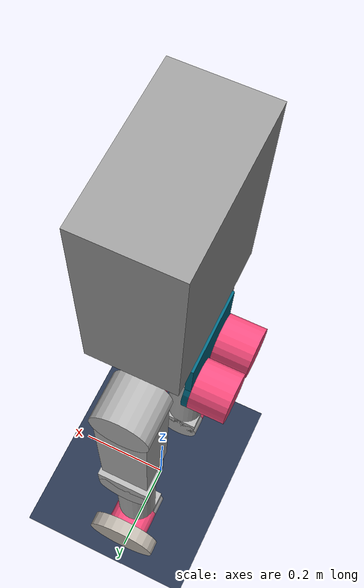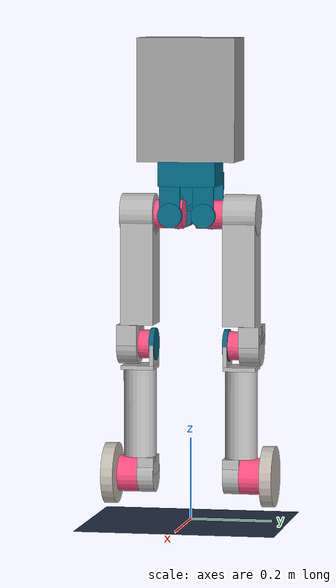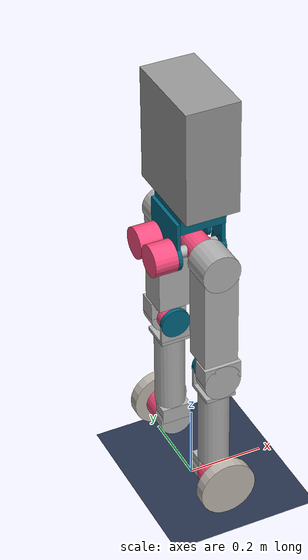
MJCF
<mujoco model="Wheel-legged Humanoid Robot : MAHRU-S(MAHRU-Satyr)">
  <compiler angle="degree" coordinate="local" inertiafromgeom="true" texturedir="PNG"/>

  <option>
    <flag gravity="enable" sensornoise="disable" override="enable"/>
  </option>

  <option	timestep="0.001" gravity="0 0 -9.81" integrator="Euler" o_solref="0.005 0.2" o_solimp="0.95 0.98 0.01 0.5 2"
          cone="elliptic" jacobian="auto" solver="Newton" tolerance="1e-10" impratio="1.0"/>

  <visual>
    <global fovy="45" linewidth="2" glow="0.3"/>
    <quality shadowsize="2048" numslices="48"/>
    <map stiffness="50" stiffnessrot="100"/>
    <scale forcewidth="0.03" contactwidth="0.15" contactheight="0.1" connect="0.1" com="0.2" jointlength="2.5" jointwidth="0.05"
           actuatorlength="0.5" actuatorwidth="0.3" framelength="1" framewidth="0.03"/>
    <rgba haze="0.6 0.8 0.9 1" force="1 0 0 0.5" com="0 0 1 1"/>
  </visual>

  <default>
    <geom contype="1" conaffinity="1" condim="3" material="MatGnd"/>
    <joint limited="false" damping="0.1" armature=".1" stiffness="0" frictionloss="0"/>
    <motor gear="100 0 0 0 0 0" ctrllimited="true" ctrlrange="-100 100"/>
  </default>

  <asset>
    <texture name="picfloor" type="2d"     builtin="none" file="Marble-03.png"/>
    <texture name="picmetal" type="2d"     builtin="none" file="MetallicSilver-01.png"/>
    <texture name="picstone" type="2d"     builtin="none" file="Stone-01.png"/>
    <texture name="picwheel" type="2d"     builtin="none" file="Wheel-01.png"/>
    <texture name="picomniw" type="2d"     builtin="none" file="OmniWheel-01.png"/>
    <texture name="texplane" type="2d"     builtin="checker"  width="512" height="512" mark="edge"  rgb1="0.2 0.3 0.4" rgb2="0.1 0.1 0.2" markrgb="1 1 1"/>
    <texture name="texgeom"  type="cube"   builtin="flat"     width="512" height="512" mark="cross" rgb1="0.8 0.6 0.4" rgb2="0.8 0.6 0.4" markrgb="1 1 1"/>
    <texture name="sky"      type="skybox" builtin="gradient" width="512" height="512" rgb1="1 1 1" rgb2="0.6 0.8 1"/>

    <material name="MatGnd"   reflectance="0" specular="1" shininess="1" rgba="0 0.4 0.5 1"/>
    <!--material name="MatGnd"   reflectance="0" specular="1" shininess="1" rgba="1 1 1 1"/-->
    <material name="MatGeom"  texture="texgeom" texuniform="true"/>
    <material name="MatPlane" texture="texplane" reflectance='0' texrepeat="1 1" texuniform="true"/>
    <material name="MatFloor" texture="picfloor" reflectance='0.05' shininess="0.9" texrepeat="2 2" texuniform="true"/>
    <material name="MatStone" texture="picstone"/>
    <material name="MatWheel" texture="picwheel" emission="0.3" reflectance="0.3" shininess="0.5"/>
    <material name="MatOmniW" texture="picomniw" emission="0.3" reflectance="0.3" shininess="0.5"/>
    <material name="MatMetal" texture="picmetal"/>
  </asset>

  <worldbody>
    <light directional="true" pos=" 5 -5 5" dir="-0.5  0.5 -1" diffuse="0.3 0.3 0.3" specular="0.0 0.0 0.0" castshadow="false"/>
    <light directional="true" pos=" 5  5 5" dir="-0.5 -0.5 -1" diffuse="0.3 0.3 0.3" specular="0.0 0.0 0.0" castshadow="false"/>
    <light directional="true" pos="-5  5 5" dir=" 0.5 -0.5 -1" diffuse="0.3 0.3 0.3" specular="0.0 0.0 0.0" castshadow="false"/>
    <light directional="true" pos="-5 -5 5" dir=" 0.5  0.5 -1" diffuse="0.3 0.3 0.3" specular="0.0 0.0 0.0" castshadow="false"/>
    <!--light directional="true" pos=" 0  0 5" dir=" 0.0  0.0 -1" diffuse="0.1 0.1 0.1" specular="0.1 0.1 0.1" castshadow="false"/-->

    <!-- Ground -->
    <geom name="Ground" type="plane" pos="0 0 0" size="0 0 100" material="MatPlane" condim="3"/>

    <!-- ########## Wheel-Legged Humanoid Robot : MAHRU-S ########## -->
    <body name="Pelvis" pos="0 0 0.85" euler="0 0 0">
      <!--freejoint name="Floating-Base"/-->
      <joint name="Floating-Base" type="free"/>
      <inertial pos="0 0 0.15" mass="8.0"/>
      <geom type="box" pos="0 0 0" euler="0 0 0" size="0.06 0.07 0.03" rgba="0.5 0.5 0.5 1"/>
      <geom type="box" pos="0 0 0.18" euler="0 0 0" size="0.07 0.12 0.15" rgba="0.6 0.6 0.6 1"/>

      <geom type="box" pos="-0.065 0 -0.05" euler="0 0 0" size="0.005 0.07 0.05" rgba="0.5 0.5 0.5 1"/>
      <geom type="cylinder" pos="-0.065 -0.041 -0.1" euler="0 90 0" size="0.041 0.005" rgba="0.5 0.5 0.5 1"/>
      <geom type="cylinder" pos="-0.065  0.041 -0.1" euler="0 90 0" size="0.041 0.005" rgba="0.5 0.5 0.5 1"/>

      <geom type="box" pos="0.055 -0.041 -0.065" euler="0 0 0" size="0.005 0.025 0.035" rgba="0.5 0.5 0.5 1"/>
      <geom type="cylinder" pos="0.056 -0.041 -0.1" euler="0 90 0" size="0.03 0.006" rgba="0.5 0.5 0.5 1"/>
      <geom type="box" pos="0.055  0.041 -0.065" euler="0 0 0" size="0.005 0.025 0.035" rgba="0.5 0.5 0.5 1"/>
      <geom type="cylinder" pos="0.056 0.041 -0.1" euler="0 90 0" size="0.03 0.006" rgba="0.5 0.5 0.5 1"/>

      <!-- Right/Left Hip Roll Actuator -->
      <geom type="cylinder" pos="-0.1  0.041 -0.1" euler="0 90 0" size="0.041 0.03" rgba="1.0 0.3 0.5 1"/>
      <geom type="cylinder" pos="-0.1 -0.041 -0.1" euler="0 90 0" size="0.041 0.03" rgba="1.0 0.3 0.5 1"/>

      <!-- ===== Right Leg & Wheel ===== -->
      <body name="Right Hip Roll" pos="0 -0.041 -0.1" euler="0 90 0">
        <joint name="Right Hip Roll" type="hinge" axis="0 0 1" armature="0.1" limited="true" range="-90 90"
               springref="0" springdamper="0.05 1"/>
        <inertial pos="0 0 0" mass="2.5"/>
        <geom type="cylinder" pos="0 0 -0.005" euler="0 0 0" size="0.015 0.054" rgba="0.7 0.7 0.7 1"/>

        <!-- Right Hip Pitch Actuator -->
        <geom type="cylinder" pos="0 -0.01 0" euler="90 0 0" size="0.035 0.035" rgba="1.0 0.3 0.5 1"/>

        <body name="Right Thigh" pos="0 -0.085 0" euler="90 0 0">
          <joint name="Right Hip Pitch" type="hinge" axis ="0 0 1" armature="0.1" limited="true" range="-90 160"
                 springref="0" springdamper="0.5 1"/>
          <inertial pos="0.16 0 0" mass="3.5"/>
          <geom type="cylinder" pos="0 0 0.001" euler="0 0 0" size="0.05 0.041" rgba="0.7 0.7 0.7 1"/>
          <geom type="box" pos="0.135 0 0" euler="0 0 0" size="0.135 0.045 0.04" rgba="0.7 0.7 0.7 1"/>
          <geom type="box" pos="0.295 0 0.025" euler="0 0 0" size="0.025 0.049 0.025" rgba="0.7 0.7 0.7 1"/>
          <geom type="cylinder" pos="0.32 0 0.025" euler="0 0 0" size="0.049 0.025" rgba="0.7 0.7 0.7 1"/>

          <!-- Right Knee Actuator -->
          <geom type="cylinder" pos="0.32 0 -0.015" euler="0 0 0" size="0.035 0.014" rgba="1.0 0.3 0.5 1"/>

          <body name="Right Shin" pos="0.32 0 0" euler="0 0 0">
            <joint name="Right Knee" type="hinge" axis ="0 0 1" armature="0.1" limited="true" range="-150 0"
                   springref="0" springdamper="0.5 1"/>
            <inertial pos="0.25 0 0" mass="3.5"/>
            <geom type="cylinder" pos="0 0 -0.035" euler="0 0 0" size="0.04 0.006" rgba="0.5 0.5 0.5 1"/>
            <geom type="box" pos="0.025 0 -0.035" euler="0 0 0" size="0.025 0.04 0.005" rgba="0.7 0.7 0.7 1"/>
            <geom type="box" pos="0.055 0 0" euler="0 0 0" size="0.005 0.04 0.04" rgba="0.7 0.7 0.7 1"/>
            <geom type="cylinder" pos="0.168 0 0" euler="0 90 0" size="0.04 0.108" rgba="0.7 0.7 0.7 1"/>
            <geom type="box" pos="0.298 0 -0.02" euler="0 0 0" size="0.022 0.040 0.02" rgba="0.7 0.7 0.7 1"/>
            <geom type="cylinder" pos="0.32 0 -0.02" euler="0 0 0" size="0.045 0.02" rgba="0.7 0.7 0.7 1"/>

            <!-- Right Wheel Actuator -->
            <geom type="cylinder" pos="0.32 0 0.025" euler="0 0 0" size="0.045 0.025" rgba="1.0 0.3 0.5 1"/>

            <body name="RightWheel" pos="0.32 0 0.07">
              <joint name="Wheel-R" pos="0 0 0" type="hinge" axis="0 0 1" armature="0.1" ref="0"/>
              <inertial pos="0 0 0" mass="1.5"/>
              <geom name="RW" type="cylinder" pos="0 0 0" size="0.075 0.015" material="MatWheel"/>
            </body>
          </body>
        </body>
      </body>  <!-- End of Right Leg & Wheel -->

      <!-- ===== Left Leg & Wheel ===== -->
      <body name="Left Hip Roll" pos="0 0.041 -0.1" euler="0 90 0">
        <joint name="Left Hip Roll" type="hinge" axis="0 0 1" armature="0.1" limited="true" range="-90 90"
               springref="0" springdamper="0.05 1"/>
        <inertial pos="0 0 0" mass="2.5"/>
        <geom type="cylinder" pos="0 0 -0.005" euler="0 0 0" size="0.015 0.054" rgba="0.7 0.7 0.7 1"/>
        <!-- Left Hip Pitch Actuator -->
        <geom type="cylinder" pos="0 0.01 0" euler="90 0 0" size="0.035 0.035" rgba="1.0 0.3 0.5 1"/>

        <body name="Left Thigh" pos="0 0.085 0" euler="90 0 0">
          <joint name="Left Hip Pitch" type="hinge" axis ="0 0 1" armature="0.1" limited="true" range="-90 160"
                 springref="0" springdamper="0.5 1"/>
          <inertial pos="0.16 0 0" mass="3.5"/>
          <geom type="cylinder" pos="0 0 -0.001" euler="0 0 0" size="0.05 0.041" rgba="0.7 0.7 0.7 1"/>
          <geom type="box" pos="0.135 0 0" euler="0 0 0" size="0.135 0.045 0.04" rgba="0.7 0.7 0.7 1"/>
          <geom type="box" pos="0.295 0 -0.025" euler="0 0 0" size="0.025 0.049 0.025" rgba="0.7 0.7 0.7 1"/>
          <geom type="cylinder" pos="0.32 0 -0.025" euler="0 0 0" size="0.049 0.025" rgba="0.7 0.7 0.7 1"/>

          <!-- Left Knee Actuator -->
          <geom type="cylinder" pos="0.32 0 0.015" euler="0 0 0" size="0.035 0.014" rgba="1.0 0.3 0.5 1"/>

          <body name="Left Shin" pos="0.32 0 0" euler="0 0 0">
            <joint name="Left Knee" type="hinge" axis ="0 0 1" armature="0.1" limited="true" range="-150 0"
                   springref="0" springdamper="0.5 1"/>
            <inertial pos="0.25 0 0" mass="3.5"/>
            <geom type="cylinder" pos="0 0 0.035" euler="0 0 0" size="0.04 0.006" rgba="0.5 0.5 0.5 1"/>
            <geom type="box" pos="0.025 0 0.035" euler="0 0 0" size="0.025 0.04 0.005" rgba="0.7 0.7 0.7 1"/>
            <geom type="box" pos="0.055 0 0" euler="0 0 0" size="0.005 0.04 0.04" rgba="0.7 0.7 0.7 1"/>
            <geom type="cylinder" pos="0.168 0 0" euler="0 90 0" size="0.04 0.108" rgba="0.7 0.7 0.7 1"/>
            <geom type="box" pos="0.298 0 0.02" euler="0 0 0" size="0.022 0.040 0.02" rgba="0.7 0.7 0.7 1"/>
            <geom type="cylinder" pos="0.32 0 0.02" euler="0 0 0" size="0.045 0.02" rgba="0.7 0.7 0.7 1"/>

            <!-- Left Wheel Actuator -->
            <geom type="cylinder" pos="0.32 0 -0.025" euler="0 0 0" size="0.045 0.025" rgba="1.0 0.3 0.5 1"/>

            <body name="LeftWheel" pos="0.32 0 -0.07">
              <joint name="Wheel-L" pos="0 0 0" type="hinge" axis="0 0 1" armature="0.1" ref="0"/>
              <inertial pos="0 0 0" mass="1.5"/>
              <geom name="LW" type="cylinder" pos="0 0 0" size="0.075 0.015" material="MatWheel"/>
            </body>
          </body>
        </body>
      </body>  <!-- End of Left Leg & Wheel -->

    </body>  <!-- ########## End of Wheeled-Humanoid ########## -->
  </worldbody>

  <contact>
    <pair name="GrContact5" geom1="Ground" geom2="RW" friction="10 10 1 1 1"/>
    <pair name="GrContact6" geom1="Ground" geom2="LW" friction="10 10 1 1 1"/>
  </contact>

</mujoco>
